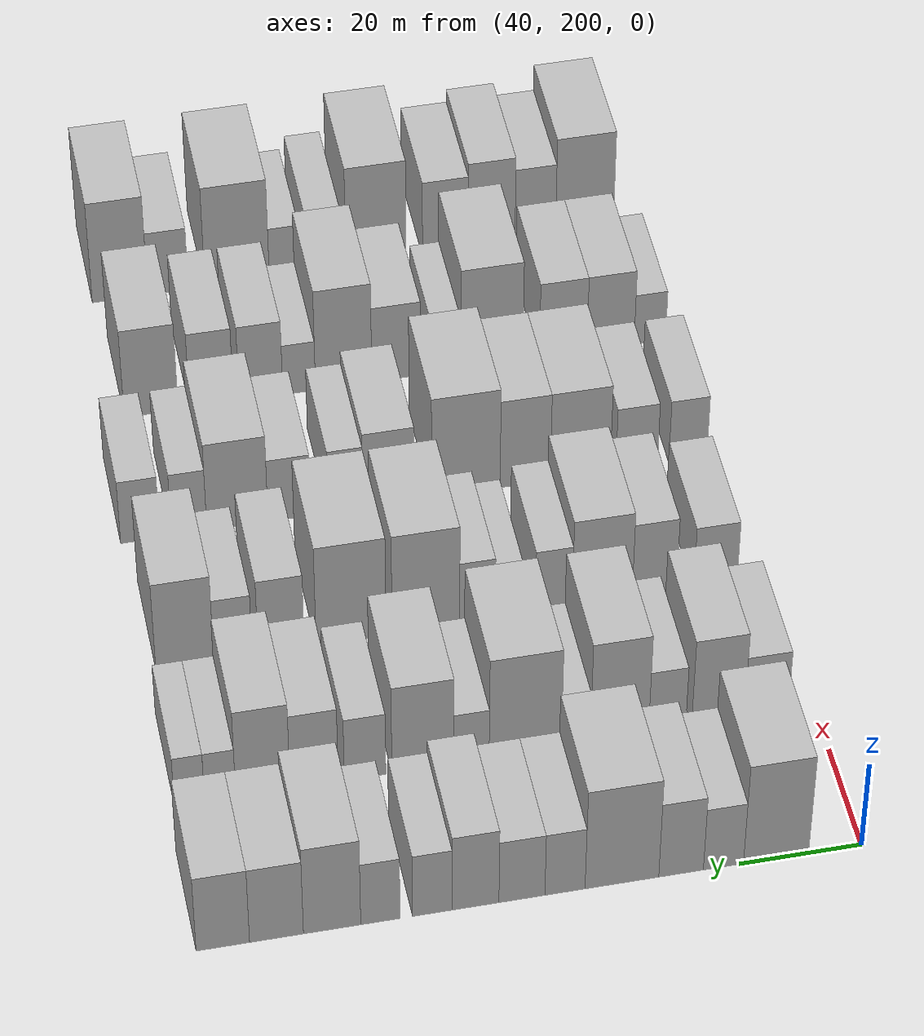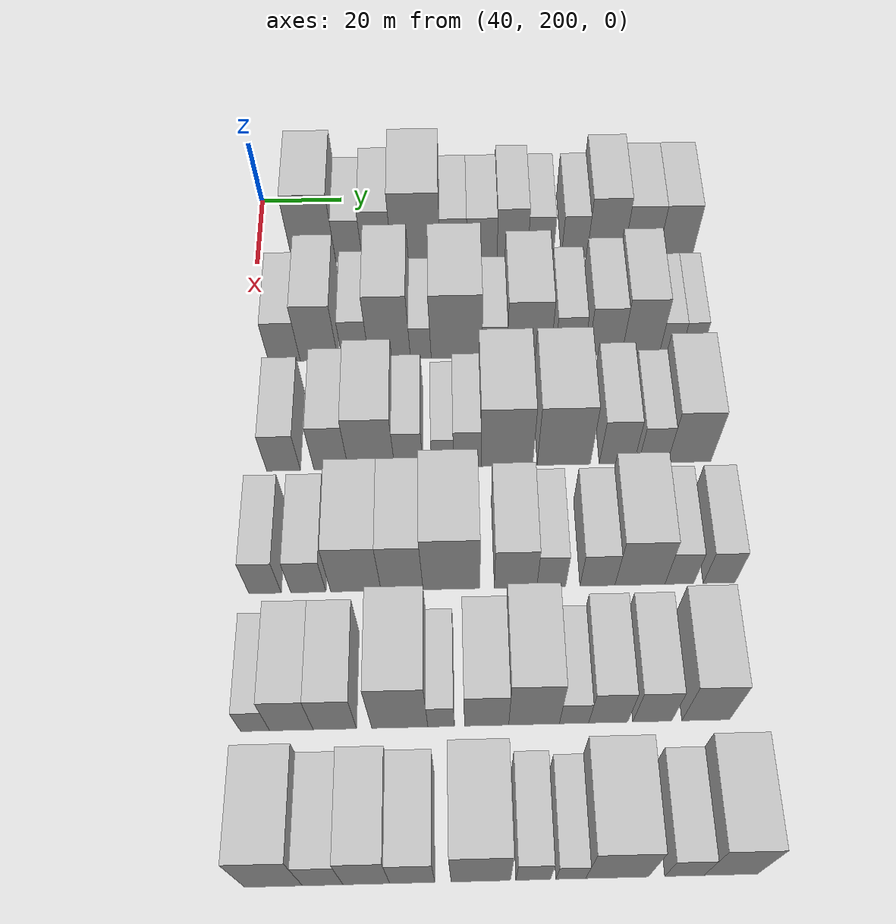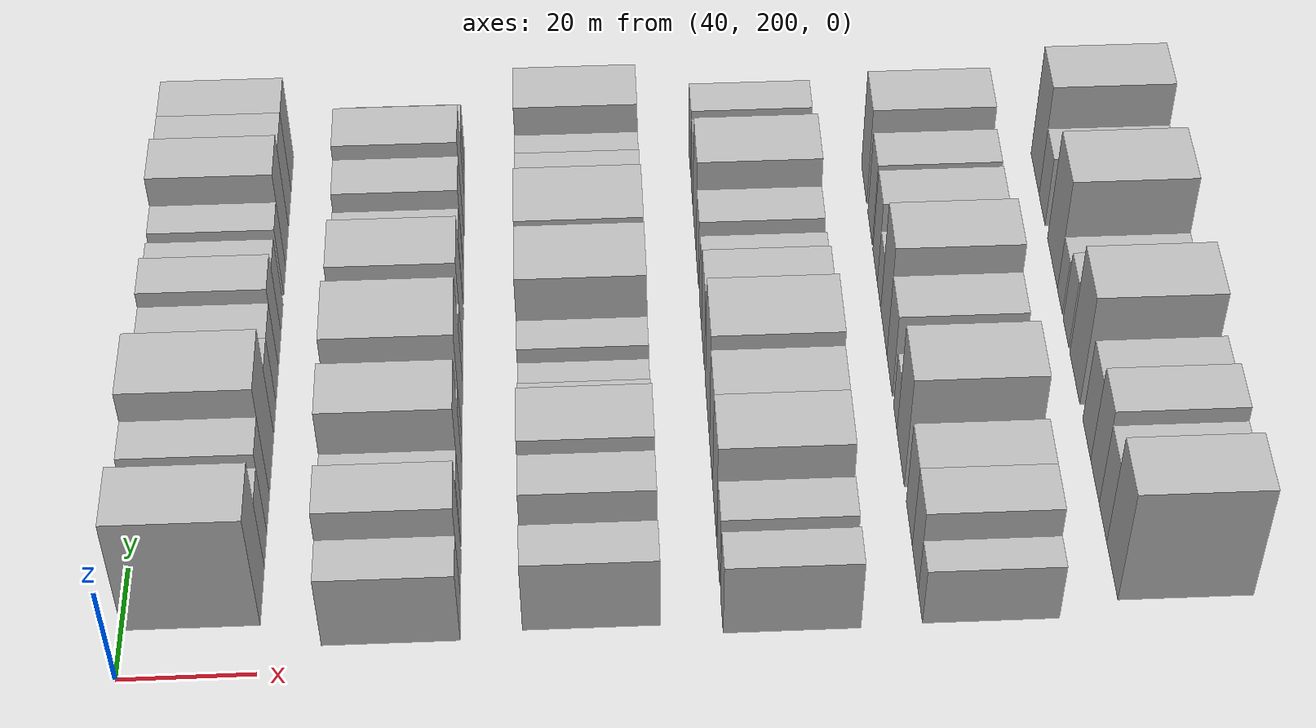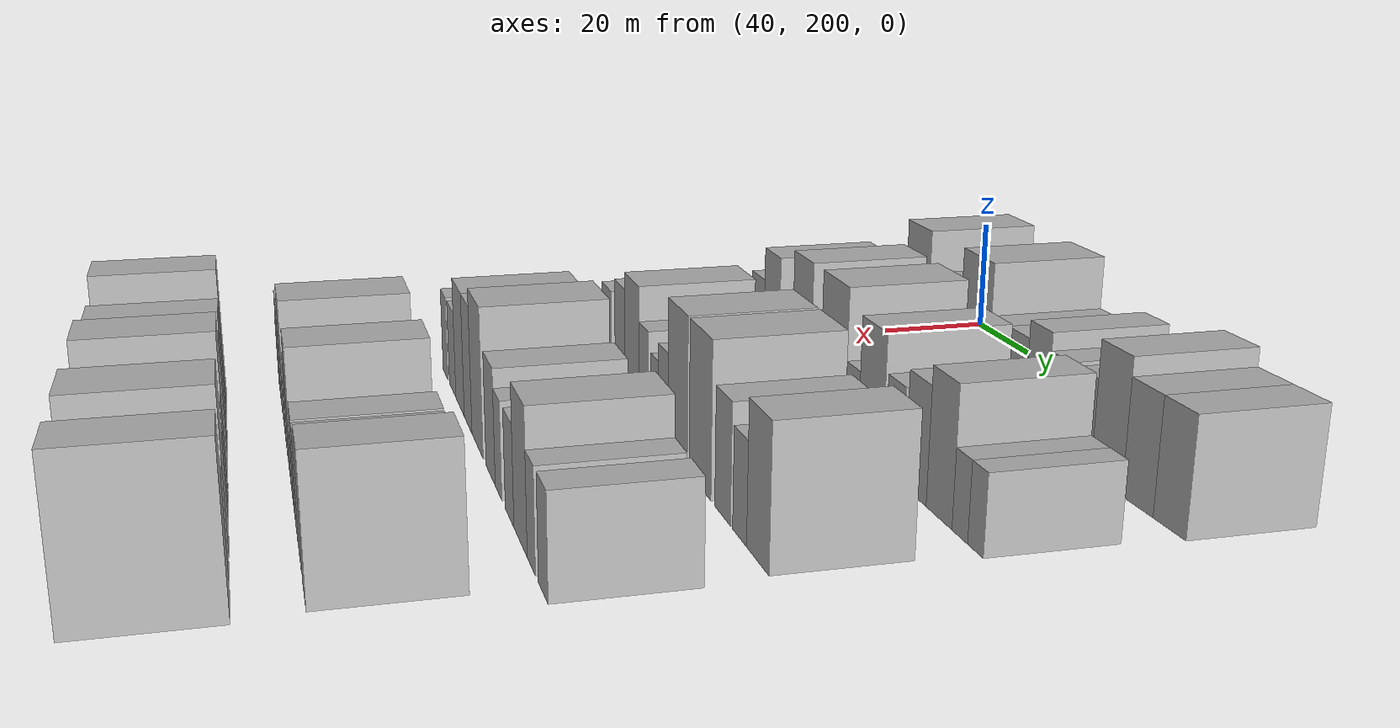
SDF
<sdf version="1.6">
 <world name="default">
  <model name="building_84">
   <static>1</static>
   <pose>50.0000 214.0266 0 0.000000 0.000000 0.000000</pose>
   <link name="link">
    <pose>0 0 12.00 0 0 0</pose>
    <collision name="collision"><geometry><box><size>20.0000 10.6325 24.0000</size></box></geometry></collision>
    <visual name="visual">
     <cast_shadows>0</cast_shadows>
     <geometry><box><size>20.0000 10.6325 24.0000</size></box></geometry>
     <material>
      <script>
       <uri>model://HANNAS_wall/materials/scripts</uri>
       <uri>model://HANNAS_wall/materials/textures</uri>
       <name>vrc/HANNAS_wall</name>
      </script>
     </material>
    </visual>
   </link>
  </model>
  <model name="building_85">
   <static>1</static>
   <pose>50.0000 222.6089 0 0.000000 0.000000 0.000000</pose>
   <link name="link">
    <pose>0 0 7.50 0 0 0</pose>
    <collision name="collision"><geometry><box><size>20.0000 6.5323 15.0000</size></box></geometry></collision>
    <visual name="visual">
     <cast_shadows>0</cast_shadows>
     <geometry><box><size>20.0000 6.5323 15.0000</size></box></geometry>
     <material>
      <script>
       <uri>model://HANNAS_wall/materials/scripts</uri>
       <uri>model://HANNAS_wall/materials/textures</uri>
       <name>vrc/HANNAS_wall</name>
      </script>
     </material>
    </visual>
   </link>
  </model>
  <model name="building_86">
   <static>1</static>
   <pose>50.0000 229.4984 0 0.000000 0.000000 0.000000</pose>
   <link name="link">
    <pose>0 0 9.00 0 0 0</pose>
    <collision name="collision"><geometry><box><size>20.0000 7.2466 18.0000</size></box></geometry></collision>
    <visual name="visual">
     <cast_shadows>0</cast_shadows>
     <geometry><box><size>20.0000 7.2466 18.0000</size></box></geometry>
     <material>
      <script>
       <uri>model://HANNAS_wall/materials/scripts</uri>
       <uri>model://HANNAS_wall/materials/textures</uri>
       <name>vrc/HANNAS_wall</name>
      </script>
     </material>
    </visual>
   </link>
  </model>
  <model name="building_87">
   <static>1</static>
   <pose>50.0000 239.0896 0 0.000000 0.000000 0.000000</pose>
   <link name="link">
    <pose>0 0 12.00 0 0 0</pose>
    <collision name="collision"><geometry><box><size>20.0000 11.9358 24.0000</size></box></geometry></collision>
    <visual name="visual">
     <cast_shadows>0</cast_shadows>
     <geometry><box><size>20.0000 11.9358 24.0000</size></box></geometry>
     <material>
      <script>
       <uri>model://HANNAS_wall/materials/scripts</uri>
       <uri>model://HANNAS_wall/materials/textures</uri>
       <name>vrc/HANNAS_wall</name>
      </script>
     </material>
    </visual>
   </link>
  </model>
  <model name="building_88">
   <static>1</static>
   <pose>50.0000 248.2940 0 0.000000 0.000000 0.000000</pose>
   <link name="link">
    <pose>0 0 7.50 0 0 0</pose>
    <collision name="collision"><geometry><box><size>20.0000 6.4732 15.0000</size></box></geometry></collision>
    <visual name="visual">
     <cast_shadows>0</cast_shadows>
     <geometry><box><size>20.0000 6.4732 15.0000</size></box></geometry>
     <material>
      <script>
       <uri>model://HANNAS_wall/materials/scripts</uri>
       <uri>model://HANNAS_wall/materials/textures</uri>
       <name>vrc/HANNAS_wall</name>
      </script>
     </material>
    </visual>
   </link>
  </model>
  <model name="building_89">
   <static>1</static>
   <pose>50.0000 255.2293 0 0.000000 0.000000 0.000000</pose>
   <link name="link">
    <pose>0 0 7.50 0 0 0</pose>
    <collision name="collision"><geometry><box><size>20.0000 7.3974 15.0000</size></box></geometry></collision>
    <visual name="visual">
     <cast_shadows>0</cast_shadows>
     <geometry><box><size>20.0000 7.3974 15.0000</size></box></geometry>
     <material>
      <script>
       <uri>model://HANNAS_wall/materials/scripts</uri>
       <uri>model://HANNAS_wall/materials/textures</uri>
       <name>vrc/HANNAS_wall</name>
      </script>
     </material>
    </visual>
   </link>
  </model>
  <model name="building_90">
   <static>1</static>
   <pose>50.0000 262.6888 0 0.000000 0.000000 0.000000</pose>
   <link name="link">
    <pose>0 0 9.00 0 0 0</pose>
    <collision name="collision"><geometry><box><size>20.0000 7.5216 18.0000</size></box></geometry></collision>
    <visual name="visual">
     <cast_shadows>0</cast_shadows>
     <geometry><box><size>20.0000 7.5216 18.0000</size></box></geometry>
     <material>
      <script>
       <uri>model://HANNAS_wall/materials/scripts</uri>
       <uri>model://HANNAS_wall/materials/textures</uri>
       <name>vrc/HANNAS_wall</name>
      </script>
     </material>
    </visual>
   </link>
  </model>
  <model name="building_91">
   <static>1</static>
   <pose>50.0000 269.6065 0 0.000000 0.000000 0.000000</pose>
   <link name="link">
    <pose>0 0 7.50 0 0 0</pose>
    <collision name="collision"><geometry><box><size>20.0000 6.3138 15.0000</size></box></geometry></collision>
    <visual name="visual">
     <cast_shadows>0</cast_shadows>
     <geometry><box><size>20.0000 6.3138 15.0000</size></box></geometry>
     <material>
      <script>
       <uri>model://HANNAS_wall/materials/scripts</uri>
       <uri>model://HANNAS_wall/materials/textures</uri>
       <name>vrc/HANNAS_wall</name>
      </script>
     </material>
    </visual>
   </link>
  </model>
  <model name="building_92">
   <static>1</static>
   <pose>50.0000 277.8945 0 0.000000 0.000000 0.000000</pose>
   <link name="link">
    <pose>0 0 7.50 0 0 0</pose>
    <collision name="collision"><geometry><box><size>20.0000 6.2622 15.0000</size></box></geometry></collision>
    <visual name="visual">
     <cast_shadows>0</cast_shadows>
     <geometry><box><size>20.0000 6.2622 15.0000</size></box></geometry>
     <material>
      <script>
       <uri>model://HANNAS_wall/materials/scripts</uri>
       <uri>model://HANNAS_wall/materials/textures</uri>
       <name>vrc/HANNAS_wall</name>
      </script>
     </material>
    </visual>
   </link>
  </model>
  <model name="building_93">
   <static>1</static>
   <pose>50.0000 285.5825 0 0.000000 0.000000 0.000000</pose>
   <link name="link">
    <pose>0 0 10.50 0 0 0</pose>
    <collision name="collision"><geometry><box><size>20.0000 9.1138 21.0000</size></box></geometry></collision>
    <visual name="visual">
     <cast_shadows>0</cast_shadows>
     <geometry><box><size>20.0000 9.1138 21.0000</size></box></geometry>
     <material>
      <script>
       <uri>model://HANNAS_wall/materials/scripts</uri>
       <uri>model://HANNAS_wall/materials/textures</uri>
       <name>vrc/HANNAS_wall</name>
      </script>
     </material>
    </visual>
   </link>
  </model>
  <model name="building_94">
   <static>1</static>
   <pose>50.0000 294.4108 0 0.000000 0.000000 0.000000</pose>
   <link name="link">
    <pose>0 0 9.00 0 0 0</pose>
    <collision name="collision"><geometry><box><size>20.0000 8.5429 18.0000</size></box></geometry></collision>
    <visual name="visual">
     <cast_shadows>0</cast_shadows>
     <geometry><box><size>20.0000 8.5429 18.0000</size></box></geometry>
     <material>
      <script>
       <uri>model://HANNAS_wall/materials/scripts</uri>
       <uri>model://HANNAS_wall/materials/textures</uri>
       <name>vrc/HANNAS_wall</name>
      </script>
     </material>
    </visual>
   </link>
  </model>
  <model name="building_95">
   <static>1</static>
   <pose>50.0000 302.9079 0 0.000000 0.000000 0.000000</pose>
   <link name="link">
    <pose>0 0 9.00 0 0 0</pose>
    <collision name="collision"><geometry><box><size>20.0000 8.4512 18.0000</size></box></geometry></collision>
    <visual name="visual">
     <cast_shadows>0</cast_shadows>
     <geometry><box><size>20.0000 8.4512 18.0000</size></box></geometry>
     <material>
      <script>
       <uri>model://HANNAS_wall/materials/scripts</uri>
       <uri>model://HANNAS_wall/materials/textures</uri>
       <name>vrc/HANNAS_wall</name>
      </script>
     </material>
    </visual>
   </link>
  </model>
  <model name="building_195">
   <static>1</static>
   <pose>79.0000 208.3672 0 0.000000 0.000000 0.000000</pose>
   <link name="link">
    <pose>0 0 7.50 0 0 0</pose>
    <collision name="collision"><geometry><box><size>20.0000 7.3820 15.0000</size></box></geometry></collision>
    <visual name="visual">
     <cast_shadows>0</cast_shadows>
     <geometry><box><size>20.0000 7.3820 15.0000</size></box></geometry>
     <material>
      <script>
       <uri>model://HANNAS_wall/materials/scripts</uri>
       <uri>model://HANNAS_wall/materials/textures</uri>
       <name>vrc/HANNAS_wall</name>
      </script>
     </material>
    </visual>
   </link>
  </model>
  <model name="building_196">
   <static>1</static>
   <pose>79.0000 216.4586 0 0.000000 0.000000 0.000000</pose>
   <link name="link">
    <pose>0 0 10.50 0 0 0</pose>
    <collision name="collision"><geometry><box><size>20.0000 8.8009 21.0000</size></box></geometry></collision>
    <visual name="visual">
     <cast_shadows>0</cast_shadows>
     <geometry><box><size>20.0000 8.8009 21.0000</size></box></geometry>
     <material>
      <script>
       <uri>model://HANNAS_wall/materials/scripts</uri>
       <uri>model://HANNAS_wall/materials/textures</uri>
       <name>vrc/HANNAS_wall</name>
      </script>
     </material>
    </visual>
   </link>
  </model>
  <model name="building_197">
   <static>1</static>
   <pose>79.0000 224.9565 0 0.000000 0.000000 0.000000</pose>
   <link name="link">
    <pose>0 0 7.50 0 0 0</pose>
    <collision name="collision"><geometry><box><size>20.0000 6.1950 15.0000</size></box></geometry></collision>
    <visual name="visual">
     <cast_shadows>0</cast_shadows>
     <geometry><box><size>20.0000 6.1950 15.0000</size></box></geometry>
     <material>
      <script>
       <uri>model://HANNAS_wall/materials/scripts</uri>
       <uri>model://HANNAS_wall/materials/textures</uri>
       <name>vrc/HANNAS_wall</name>
      </script>
     </material>
    </visual>
   </link>
  </model>
  <model name="building_198">
   <static>1</static>
   <pose>79.0000 232.9053 0 0.000000 0.000000 0.000000</pose>
   <link name="link">
    <pose>0 0 12.00 0 0 0</pose>
    <collision name="collision"><geometry><box><size>20.0000 9.7025 24.0000</size></box></geometry></collision>
    <visual name="visual">
     <cast_shadows>0</cast_shadows>
     <geometry><box><size>20.0000 9.7025 24.0000</size></box></geometry>
     <material>
      <script>
       <uri>model://HANNAS_wall/materials/scripts</uri>
       <uri>model://HANNAS_wall/materials/textures</uri>
       <name>vrc/HANNAS_wall</name>
      </script>
     </material>
    </visual>
   </link>
  </model>
  <model name="building_199">
   <static>1</static>
   <pose>79.0000 240.1690 0 0.000000 0.000000 0.000000</pose>
   <link name="link">
    <pose>0 0 6.00 0 0 0</pose>
    <collision name="collision"><geometry><box><size>20.0000 4.8248 12.0000</size></box></geometry></collision>
    <visual name="visual">
     <cast_shadows>0</cast_shadows>
     <geometry><box><size>20.0000 4.8248 12.0000</size></box></geometry>
     <material>
      <script>
       <uri>model://HANNAS_wall/materials/scripts</uri>
       <uri>model://HANNAS_wall/materials/textures</uri>
       <name>vrc/HANNAS_wall</name>
      </script>
     </material>
    </visual>
   </link>
  </model>
  <model name="building_200">
   <static>1</static>
   <pose>79.0000 248.5362 0 0.000000 0.000000 0.000000</pose>
   <link name="link">
    <pose>0 0 12.00 0 0 0</pose>
    <collision name="collision"><geometry><box><size>20.0000 11.9097 24.0000</size></box></geometry></collision>
    <visual name="visual">
     <cast_shadows>0</cast_shadows>
     <geometry><box><size>20.0000 11.9097 24.0000</size></box></geometry>
     <material>
      <script>
       <uri>model://HANNAS_wall/materials/scripts</uri>
       <uri>model://HANNAS_wall/materials/textures</uri>
       <name>vrc/HANNAS_wall</name>
      </script>
     </material>
    </visual>
   </link>
  </model>
  <model name="building_201">
   <static>1</static>
   <pose>79.0000 257.3900 0 0.000000 0.000000 0.000000</pose>
   <link name="link">
    <pose>0 0 6.00 0 0 0</pose>
    <collision name="collision"><geometry><box><size>20.0000 5.7978 12.0000</size></box></geometry></collision>
    <visual name="visual">
     <cast_shadows>0</cast_shadows>
     <geometry><box><size>20.0000 5.7978 12.0000</size></box></geometry>
     <material>
      <script>
       <uri>model://HANNAS_wall/materials/scripts</uri>
       <uri>model://HANNAS_wall/materials/textures</uri>
       <name>vrc/HANNAS_wall</name>
      </script>
     </material>
    </visual>
   </link>
  </model>
  <model name="building_202">
   <static>1</static>
   <pose>79.0000 265.3870 0 0.000000 0.000000 0.000000</pose>
   <link name="link">
    <pose>0 0 10.50 0 0 0</pose>
    <collision name="collision"><geometry><box><size>20.0000 10.1962 21.0000</size></box></geometry></collision>
    <visual name="visual">
     <cast_shadows>0</cast_shadows>
     <geometry><box><size>20.0000 10.1962 21.0000</size></box></geometry>
     <material>
      <script>
       <uri>model://HANNAS_wall/materials/scripts</uri>
       <uri>model://HANNAS_wall/materials/textures</uri>
       <name>vrc/HANNAS_wall</name>
      </script>
     </material>
    </visual>
   </link>
  </model>
  <model name="building_203">
   <static>1</static>
   <pose>79.0000 274.8797 0 0.000000 0.000000 0.000000</pose>
   <link name="link">
    <pose>0 0 7.50 0 0 0</pose>
    <collision name="collision"><geometry><box><size>20.0000 6.7892 15.0000</size></box></geometry></collision>
    <visual name="visual">
     <cast_shadows>0</cast_shadows>
     <geometry><box><size>20.0000 6.7892 15.0000</size></box></geometry>
     <material>
      <script>
       <uri>model://HANNAS_wall/materials/scripts</uri>
       <uri>model://HANNAS_wall/materials/textures</uri>
       <name>vrc/HANNAS_wall</name>
      </script>
     </material>
    </visual>
   </link>
  </model>
  <model name="building_204">
   <static>1</static>
   <pose>79.0000 283.2066 0 0.000000 0.000000 0.000000</pose>
   <link name="link">
    <pose>0 0 9.00 0 0 0</pose>
    <collision name="collision"><geometry><box><size>20.0000 7.8648 18.0000</size></box></geometry></collision>
    <visual name="visual">
     <cast_shadows>0</cast_shadows>
     <geometry><box><size>20.0000 7.8648 18.0000</size></box></geometry>
     <material>
      <script>
       <uri>model://HANNAS_wall/materials/scripts</uri>
       <uri>model://HANNAS_wall/materials/textures</uri>
       <name>vrc/HANNAS_wall</name>
      </script>
     </material>
    </visual>
   </link>
  </model>
  <model name="building_205">
   <static>1</static>
   <pose>79.0000 291.5649 0 0.000000 0.000000 0.000000</pose>
   <link name="link">
    <pose>0 0 10.50 0 0 0</pose>
    <collision name="collision"><geometry><box><size>20.0000 8.8518 21.0000</size></box></geometry></collision>
    <visual name="visual">
     <cast_shadows>0</cast_shadows>
     <geometry><box><size>20.0000 8.8518 21.0000</size></box></geometry>
     <material>
      <script>
       <uri>model://HANNAS_wall/materials/scripts</uri>
       <uri>model://HANNAS_wall/materials/textures</uri>
       <name>vrc/HANNAS_wall</name>
      </script>
     </material>
    </visual>
   </link>
  </model>
  <model name="building_206">
   <static>1</static>
   <pose>79.0000 298.5210 0 0.000000 0.000000 0.000000</pose>
   <link name="link">
    <pose>0 0 6.00 0 0 0</pose>
    <collision name="collision"><geometry><box><size>20.0000 5.0604 12.0000</size></box></geometry></collision>
    <visual name="visual">
     <cast_shadows>0</cast_shadows>
     <geometry><box><size>20.0000 5.0604 12.0000</size></box></geometry>
     <material>
      <script>
       <uri>model://HANNAS_wall/materials/scripts</uri>
       <uri>model://HANNAS_wall/materials/textures</uri>
       <name>vrc/HANNAS_wall</name>
      </script>
     </material>
    </visual>
   </link>
  </model>
  <model name="building_207">
   <static>1</static>
   <pose>79.0000 303.5034 0 0.000000 0.000000 0.000000</pose>
   <link name="link">
    <pose>0 0 6.00 0 0 0</pose>
    <collision name="collision"><geometry><box><size>20.0000 4.9042 12.0000</size></box></geometry></collision>
    <visual name="visual">
     <cast_shadows>0</cast_shadows>
     <geometry><box><size>20.0000 4.9042 12.0000</size></box></geometry>
     <material>
      <script>
       <uri>model://HANNAS_wall/materials/scripts</uri>
       <uri>model://HANNAS_wall/materials/textures</uri>
       <name>vrc/HANNAS_wall</name>
      </script>
     </material>
    </visual>
   </link>
  </model>
  <model name="building_313">
   <static>1</static>
   <pose>108.0000 209.8255 0 0.000000 0.000000 0.000000</pose>
   <link name="link">
    <pose>0 0 7.50 0 0 0</pose>
    <collision name="collision"><geometry><box><size>20.0000 7.4427 15.0000</size></box></geometry></collision>
    <visual name="visual">
     <cast_shadows>0</cast_shadows>
     <geometry><box><size>20.0000 7.4427 15.0000</size></box></geometry>
     <material>
      <script>
       <uri>model://HANNAS_wall/materials/scripts</uri>
       <uri>model://HANNAS_wall/materials/textures</uri>
       <name>vrc/HANNAS_wall</name>
      </script>
     </material>
    </visual>
   </link>
  </model>
  <model name="building_314">
   <static>1</static>
   <pose>108.0000 220.3286 0 0.000000 0.000000 0.000000</pose>
   <link name="link">
    <pose>0 0 9.00 0 0 0</pose>
    <collision name="collision"><geometry><box><size>20.0000 7.5635 18.0000</size></box></geometry></collision>
    <visual name="visual">
     <cast_shadows>0</cast_shadows>
     <geometry><box><size>20.0000 7.5635 18.0000</size></box></geometry>
     <material>
      <script>
       <uri>model://HANNAS_wall/materials/scripts</uri>
       <uri>model://HANNAS_wall/materials/textures</uri>
       <name>vrc/HANNAS_wall</name>
      </script>
     </material>
    </visual>
   </link>
  </model>
  <model name="building_315">
   <static>1</static>
   <pose>108.0000 229.2402 0 0.000000 0.000000 0.000000</pose>
   <link name="link">
    <pose>0 0 10.50 0 0 0</pose>
    <collision name="collision"><geometry><box><size>20.0000 10.2595 21.0000</size></box></geometry></collision>
    <visual name="visual">
     <cast_shadows>0</cast_shadows>
     <geometry><box><size>20.0000 10.2595 21.0000</size></box></geometry>
     <material>
      <script>
       <uri>model://HANNAS_wall/materials/scripts</uri>
       <uri>model://HANNAS_wall/materials/textures</uri>
       <name>vrc/HANNAS_wall</name>
      </script>
     </material>
    </visual>
   </link>
  </model>
  <model name="building_316">
   <static>1</static>
   <pose>108.0000 237.4989 0 0.000000 0.000000 0.000000</pose>
   <link name="link">
    <pose>0 0 7.50 0 0 0</pose>
    <collision name="collision"><geometry><box><size>20.0000 6.2580 15.0000</size></box></geometry></collision>
    <visual name="visual">
     <cast_shadows>0</cast_shadows>
     <geometry><box><size>20.0000 6.2580 15.0000</size></box></geometry>
     <material>
      <script>
       <uri>model://HANNAS_wall/materials/scripts</uri>
       <uri>model://HANNAS_wall/materials/textures</uri>
       <name>vrc/HANNAS_wall</name>
      </script>
     </material>
    </visual>
   </link>
  </model>
  <model name="building_317">
   <static>1</static>
   <pose>108.0000 245.0431 0 0.000000 0.000000 0.000000</pose>
   <link name="link">
    <pose>0 0 6.00 0 0 0</pose>
    <collision name="collision"><geometry><box><size>20.0000 4.8304 12.0000</size></box></geometry></collision>
    <visual name="visual">
     <cast_shadows>0</cast_shadows>
     <geometry><box><size>20.0000 4.8304 12.0000</size></box></geometry>
     <material>
      <script>
       <uri>model://HANNAS_wall/materials/scripts</uri>
       <uri>model://HANNAS_wall/materials/textures</uri>
       <name>vrc/HANNAS_wall</name>
      </script>
     </material>
    </visual>
   </link>
  </model>
  <model name="building_318">
   <static>1</static>
   <pose>108.0000 250.4618 0 0.000000 0.000000 0.000000</pose>
   <link name="link">
    <pose>0 0 7.50 0 0 0</pose>
    <collision name="collision"><geometry><box><size>20.0000 6.0070 15.0000</size></box></geometry></collision>
    <visual name="visual">
     <cast_shadows>0</cast_shadows>
     <geometry><box><size>20.0000 6.0070 15.0000</size></box></geometry>
     <material>
      <script>
       <uri>model://HANNAS_wall/materials/scripts</uri>
       <uri>model://HANNAS_wall/materials/textures</uri>
       <name>vrc/HANNAS_wall</name>
      </script>
     </material>
    </visual>
   </link>
  </model>
  <model name="building_319">
   <static>1</static>
   <pose>108.0000 259.1698 0 0.000000 0.000000 0.000000</pose>
   <link name="link">
    <pose>0 0 12.00 0 0 0</pose>
    <collision name="collision"><geometry><box><size>20.0000 11.4090 24.0000</size></box></geometry></collision>
    <visual name="visual">
     <cast_shadows>0</cast_shadows>
     <geometry><box><size>20.0000 11.4090 24.0000</size></box></geometry>
     <material>
      <script>
       <uri>model://HANNAS_wall/materials/scripts</uri>
       <uri>model://HANNAS_wall/materials/textures</uri>
       <name>vrc/HANNAS_wall</name>
      </script>
     </material>
    </visual>
   </link>
  </model>
  <model name="building_320">
   <static>1</static>
   <pose>108.0000 271.7683 0 0.000000 0.000000 0.000000</pose>
   <link name="link">
    <pose>0 0 12.00 0 0 0</pose>
    <collision name="collision"><geometry><box><size>20.0000 11.7879 24.0000</size></box></geometry></collision>
    <visual name="visual">
     <cast_shadows>0</cast_shadows>
     <geometry><box><size>20.0000 11.7879 24.0000</size></box></geometry>
     <material>
      <script>
       <uri>model://HANNAS_wall/materials/scripts</uri>
       <uri>model://HANNAS_wall/materials/textures</uri>
       <name>vrc/HANNAS_wall</name>
      </script>
     </material>
    </visual>
   </link>
  </model>
  <model name="building_321">
   <static>1</static>
   <pose>108.0000 283.5213 0 0.000000 0.000000 0.000000</pose>
   <link name="link">
    <pose>0 0 9.00 0 0 0</pose>
    <collision name="collision"><geometry><box><size>20.0000 7.7180 18.0000</size></box></geometry></collision>
    <visual name="visual">
     <cast_shadows>0</cast_shadows>
     <geometry><box><size>20.0000 7.7180 18.0000</size></box></geometry>
     <material>
      <script>
       <uri>model://HANNAS_wall/materials/scripts</uri>
       <uri>model://HANNAS_wall/materials/textures</uri>
       <name>vrc/HANNAS_wall</name>
      </script>
     </material>
    </visual>
   </link>
  </model>
  <model name="building_322">
   <static>1</static>
   <pose>108.0000 291.5902 0 0.000000 0.000000 0.000000</pose>
   <link name="link">
    <pose>0 0 7.50 0 0 0</pose>
    <collision name="collision"><geometry><box><size>20.0000 6.4199 15.0000</size></box></geometry></collision>
    <visual name="visual">
     <cast_shadows>0</cast_shadows>
     <geometry><box><size>20.0000 6.4199 15.0000</size></box></geometry>
     <material>
      <script>
       <uri>model://HANNAS_wall/materials/scripts</uri>
       <uri>model://HANNAS_wall/materials/textures</uri>
       <name>vrc/HANNAS_wall</name>
      </script>
     </material>
    </visual>
   </link>
  </model>
  <model name="building_323">
   <static>1</static>
   <pose>108.0000 299.6321 0 0.000000 0.000000 0.000000</pose>
   <link name="link">
    <pose>0 0 10.50 0 0 0</pose>
    <collision name="collision"><geometry><box><size>20.0000 9.6639 21.0000</size></box></geometry></collision>
    <visual name="visual">
     <cast_shadows>0</cast_shadows>
     <geometry><box><size>20.0000 9.6639 21.0000</size></box></geometry>
     <material>
      <script>
       <uri>model://HANNAS_wall/materials/scripts</uri>
       <uri>model://HANNAS_wall/materials/textures</uri>
       <name>vrc/HANNAS_wall</name>
      </script>
     </material>
    </visual>
   </link>
  </model>
  <model name="building_430">
   <static>1</static>
   <pose>137.0000 207.6276 0 0.000000 0.000000 0.000000</pose>
   <link name="link">
    <pose>0 0 7.50 0 0 0</pose>
    <collision name="collision"><geometry><box><size>20.0000 6.7034 15.0000</size></box></geometry></collision>
    <visual name="visual">
     <cast_shadows>0</cast_shadows>
     <geometry><box><size>20.0000 6.7034 15.0000</size></box></geometry>
     <material>
      <script>
       <uri>model://HANNAS_wall/materials/scripts</uri>
       <uri>model://HANNAS_wall/materials/textures</uri>
       <name>vrc/HANNAS_wall</name>
      </script>
     </material>
    </visual>
   </link>
  </model>
  <model name="building_431">
   <static>1</static>
   <pose>137.0000 216.6439 0 0.000000 0.000000 0.000000</pose>
   <link name="link">
    <pose>0 0 7.50 0 0 0</pose>
    <collision name="collision"><geometry><box><size>20.0000 7.3292 15.0000</size></box></geometry></collision>
    <visual name="visual">
     <cast_shadows>0</cast_shadows>
     <geometry><box><size>20.0000 7.3292 15.0000</size></box></geometry>
     <material>
      <script>
       <uri>model://HANNAS_wall/materials/scripts</uri>
       <uri>model://HANNAS_wall/materials/textures</uri>
       <name>vrc/HANNAS_wall</name>
      </script>
     </material>
    </visual>
   </link>
  </model>
  <model name="building_432">
   <static>1</static>
   <pose>137.0000 226.5525 0 0.000000 0.000000 0.000000</pose>
   <link name="link">
    <pose>0 0 10.50 0 0 0</pose>
    <collision name="collision"><geometry><box><size>20.0000 10.4880 21.0000</size></box></geometry></collision>
    <visual name="visual">
     <cast_shadows>0</cast_shadows>
     <geometry><box><size>20.0000 10.4880 21.0000</size></box></geometry>
     <material>
      <script>
       <uri>model://HANNAS_wall/materials/scripts</uri>
       <uri>model://HANNAS_wall/materials/textures</uri>
       <name>vrc/HANNAS_wall</name>
      </script>
     </material>
    </visual>
   </link>
  </model>
  <model name="building_433">
   <static>1</static>
   <pose>137.0000 236.1817 0 0.000000 0.000000 0.000000</pose>
   <link name="link">
    <pose>0 0 10.50 0 0 0</pose>
    <collision name="collision"><geometry><box><size>20.0000 8.7706 21.0000</size></box></geometry></collision>
    <visual name="visual">
     <cast_shadows>0</cast_shadows>
     <geometry><box><size>20.0000 8.7706 21.0000</size></box></geometry>
     <material>
      <script>
       <uri>model://HANNAS_wall/materials/scripts</uri>
       <uri>model://HANNAS_wall/materials/textures</uri>
       <name>vrc/HANNAS_wall</name>
      </script>
     </material>
    </visual>
   </link>
  </model>
  <model name="building_434">
   <static>1</static>
   <pose>137.0000 246.5152 0 0.000000 0.000000 0.000000</pose>
   <link name="link">
    <pose>0 0 12.00 0 0 0</pose>
    <collision name="collision"><geometry><box><size>20.0000 11.8962 24.0000</size></box></geometry></collision>
    <visual name="visual">
     <cast_shadows>0</cast_shadows>
     <geometry><box><size>20.0000 11.8962 24.0000</size></box></geometry>
     <material>
      <script>
       <uri>model://HANNAS_wall/materials/scripts</uri>
       <uri>model://HANNAS_wall/materials/textures</uri>
       <name>vrc/HANNAS_wall</name>
      </script>
     </material>
    </visual>
   </link>
  </model>
  <model name="building_435">
   <static>1</static>
   <pose>137.0000 259.9093 0 0.000000 0.000000 0.000000</pose>
   <link name="link">
    <pose>0 0 9.00 0 0 0</pose>
    <collision name="collision"><geometry><box><size>20.0000 8.8919 18.0000</size></box></geometry></collision>
    <visual name="visual">
     <cast_shadows>0</cast_shadows>
     <geometry><box><size>20.0000 8.8919 18.0000</size></box></geometry>
     <material>
      <script>
       <uri>model://HANNAS_wall/materials/scripts</uri>
       <uri>model://HANNAS_wall/materials/textures</uri>
       <name>vrc/HANNAS_wall</name>
      </script>
     </material>
    </visual>
   </link>
  </model>
  <model name="building_436">
   <static>1</static>
   <pose>137.0000 267.3705 0 0.000000 0.000000 0.000000</pose>
   <link name="link">
    <pose>0 0 7.50 0 0 0</pose>
    <collision name="collision"><geometry><box><size>20.0000 6.0305 15.0000</size></box></geometry></collision>
    <visual name="visual">
     <cast_shadows>0</cast_shadows>
     <geometry><box><size>20.0000 6.0305 15.0000</size></box></geometry>
     <material>
      <script>
       <uri>model://HANNAS_wall/materials/scripts</uri>
       <uri>model://HANNAS_wall/materials/textures</uri>
       <name>vrc/HANNAS_wall</name>
      </script>
     </material>
    </visual>
   </link>
  </model>
  <model name="building_437">
   <static>1</static>
   <pose>137.0000 277.0547 0 0.000000 0.000000 0.000000</pose>
   <link name="link">
    <pose>0 0 7.50 0 0 0</pose>
    <collision name="collision"><geometry><box><size>20.0000 7.3378 15.0000</size></box></geometry></collision>
    <visual name="visual">
     <cast_shadows>0</cast_shadows>
     <geometry><box><size>20.0000 7.3378 15.0000</size></box></geometry>
     <material>
      <script>
       <uri>model://HANNAS_wall/materials/scripts</uri>
       <uri>model://HANNAS_wall/materials/textures</uri>
       <name>vrc/HANNAS_wall</name>
      </script>
     </material>
    </visual>
   </link>
  </model>
  <model name="building_438">
   <static>1</static>
   <pose>137.0000 285.9719 0 0.000000 0.000000 0.000000</pose>
   <link name="link">
    <pose>0 0 10.50 0 0 0</pose>
    <collision name="collision"><geometry><box><size>20.0000 10.4966 21.0000</size></box></geometry></collision>
    <visual name="visual">
     <cast_shadows>0</cast_shadows>
     <geometry><box><size>20.0000 10.4966 21.0000</size></box></geometry>
     <material>
      <script>
       <uri>model://HANNAS_wall/materials/scripts</uri>
       <uri>model://HANNAS_wall/materials/textures</uri>
       <name>vrc/HANNAS_wall</name>
      </script>
     </material>
    </visual>
   </link>
  </model>
  <model name="building_439">
   <static>1</static>
   <pose>137.0000 294.2397 0 0.000000 0.000000 0.000000</pose>
   <link name="link">
    <pose>0 0 7.50 0 0 0</pose>
    <collision name="collision"><geometry><box><size>20.0000 6.0389 15.0000</size></box></geometry></collision>
    <visual name="visual">
     <cast_shadows>0</cast_shadows>
     <geometry><box><size>20.0000 6.0389 15.0000</size></box></geometry>
     <material>
      <script>
       <uri>model://HANNAS_wall/materials/scripts</uri>
       <uri>model://HANNAS_wall/materials/textures</uri>
       <name>vrc/HANNAS_wall</name>
      </script>
     </material>
    </visual>
   </link>
  </model>
  <model name="building_440">
   <static>1</static>
   <pose>137.0000 302.6116 0 0.000000 0.000000 0.000000</pose>
   <link name="link">
    <pose>0 0 7.50 0 0 0</pose>
    <collision name="collision"><geometry><box><size>20.0000 6.7050 15.0000</size></box></geometry></collision>
    <visual name="visual">
     <cast_shadows>0</cast_shadows>
     <geometry><box><size>20.0000 6.7050 15.0000</size></box></geometry>
     <material>
      <script>
       <uri>model://HANNAS_wall/materials/scripts</uri>
       <uri>model://HANNAS_wall/materials/textures</uri>
       <name>vrc/HANNAS_wall</name>
      </script>
     </material>
    </visual>
   </link>
  </model>
  <model name="building_534">
   <static>1</static>
   <pose>166.0000 207.5656 0 0.000000 0.000000 0.000000</pose>
   <link name="link">
    <pose>0 0 6.00 0 0 0</pose>
    <collision name="collision"><geometry><box><size>20.0000 5.6765 12.0000</size></box></geometry></collision>
    <visual name="visual">
     <cast_shadows>0</cast_shadows>
     <geometry><box><size>20.0000 5.6765 12.0000</size></box></geometry>
     <material>
      <script>
       <uri>model://HANNAS_wall/materials/scripts</uri>
       <uri>model://HANNAS_wall/materials/textures</uri>
       <name>vrc/HANNAS_wall</name>
      </script>
     </material>
    </visual>
   </link>
  </model>
  <model name="building_535">
   <static>1</static>
   <pose>166.0000 214.6602 0 0.000000 0.000000 0.000000</pose>
   <link name="link">
    <pose>0 0 9.00 0 0 0</pose>
    <collision name="collision"><geometry><box><size>20.0000 8.5126 18.0000</size></box></geometry></collision>
    <visual name="visual">
     <cast_shadows>0</cast_shadows>
     <geometry><box><size>20.0000 8.5126 18.0000</size></box></geometry>
     <material>
      <script>
       <uri>model://HANNAS_wall/materials/scripts</uri>
       <uri>model://HANNAS_wall/materials/textures</uri>
       <name>vrc/HANNAS_wall</name>
      </script>
     </material>
    </visual>
   </link>
  </model>
  <model name="building_536">
   <static>1</static>
   <pose>166.0000 223.1804 0 0.000000 0.000000 0.000000</pose>
   <link name="link">
    <pose>0 0 9.00 0 0 0</pose>
    <collision name="collision"><geometry><box><size>20.0000 8.5278 18.0000</size></box></geometry></collision>
    <visual name="visual">
     <cast_shadows>0</cast_shadows>
     <geometry><box><size>20.0000 8.5278 18.0000</size></box></geometry>
     <material>
      <script>
       <uri>model://HANNAS_wall/materials/scripts</uri>
       <uri>model://HANNAS_wall/materials/textures</uri>
       <name>vrc/HANNAS_wall</name>
      </script>
     </material>
    </visual>
   </link>
  </model>
  <model name="building_537">
   <static>1</static>
   <pose>166.0000 235.9491 0 0.000000 0.000000 0.000000</pose>
   <link name="link">
    <pose>0 0 12.00 0 0 0</pose>
    <collision name="collision"><geometry><box><size>20.0000 11.0096 24.0000</size></box></geometry></collision>
    <visual name="visual">
     <cast_shadows>0</cast_shadows>
     <geometry><box><size>20.0000 11.0096 24.0000</size></box></geometry>
     <material>
      <script>
       <uri>model://HANNAS_wall/materials/scripts</uri>
       <uri>model://HANNAS_wall/materials/textures</uri>
       <name>vrc/HANNAS_wall</name>
      </script>
     </material>
    </visual>
   </link>
  </model>
  <model name="building_538">
   <static>1</static>
   <pose>166.0000 244.0671 0 0.000000 0.000000 0.000000</pose>
   <link name="link">
    <pose>0 0 6.00 0 0 0</pose>
    <collision name="collision"><geometry><box><size>20.0000 5.2264 12.0000</size></box></geometry></collision>
    <visual name="visual">
     <cast_shadows>0</cast_shadows>
     <geometry><box><size>20.0000 5.2264 12.0000</size></box></geometry>
     <material>
      <script>
       <uri>model://HANNAS_wall/materials/scripts</uri>
       <uri>model://HANNAS_wall/materials/textures</uri>
       <name>vrc/HANNAS_wall</name>
      </script>
     </material>
    </visual>
   </link>
  </model>
  <model name="building_539">
   <static>1</static>
   <pose>166.0000 253.0116 0 0.000000 0.000000 0.000000</pose>
   <link name="link">
    <pose>0 0 9.00 0 0 0</pose>
    <collision name="collision"><geometry><box><size>20.0000 8.6625 18.0000</size></box></geometry></collision>
    <visual name="visual">
     <cast_shadows>0</cast_shadows>
     <geometry><box><size>20.0000 8.6625 18.0000</size></box></geometry>
     <material>
      <script>
       <uri>model://HANNAS_wall/materials/scripts</uri>
       <uri>model://HANNAS_wall/materials/textures</uri>
       <name>vrc/HANNAS_wall</name>
      </script>
     </material>
    </visual>
   </link>
  </model>
  <model name="building_540">
   <static>1</static>
   <pose>166.0000 262.3388 0 0.000000 0.000000 0.000000</pose>
   <link name="link">
    <pose>0 0 12.00 0 0 0</pose>
    <collision name="collision"><geometry><box><size>20.0000 9.9920 24.0000</size></box></geometry></collision>
    <visual name="visual">
     <cast_shadows>0</cast_shadows>
     <geometry><box><size>20.0000 9.9920 24.0000</size></box></geometry>
     <material>
      <script>
       <uri>model://HANNAS_wall/materials/scripts</uri>
       <uri>model://HANNAS_wall/materials/textures</uri>
       <name>vrc/HANNAS_wall</name>
      </script>
     </material>
    </visual>
   </link>
  </model>
  <model name="building_541">
   <static>1</static>
   <pose>166.0000 270.2276 0 0.000000 0.000000 0.000000</pose>
   <link name="link">
    <pose>0 0 6.00 0 0 0</pose>
    <collision name="collision"><geometry><box><size>20.0000 5.7856 12.0000</size></box></geometry></collision>
    <visual name="visual">
     <cast_shadows>0</cast_shadows>
     <geometry><box><size>20.0000 5.7856 12.0000</size></box></geometry>
     <material>
      <script>
       <uri>model://HANNAS_wall/materials/scripts</uri>
       <uri>model://HANNAS_wall/materials/textures</uri>
       <name>vrc/HANNAS_wall</name>
      </script>
     </material>
    </visual>
   </link>
  </model>
  <model name="building_542">
   <static>1</static>
   <pose>166.0000 276.9732 0 0.000000 0.000000 0.000000</pose>
   <link name="link">
    <pose>0 0 9.00 0 0 0</pose>
    <collision name="collision"><geometry><box><size>20.0000 7.7057 18.0000</size></box></geometry></collision>
    <visual name="visual">
     <cast_shadows>0</cast_shadows>
     <geometry><box><size>20.0000 7.7057 18.0000</size></box></geometry>
     <material>
      <script>
       <uri>model://HANNAS_wall/materials/scripts</uri>
       <uri>model://HANNAS_wall/materials/textures</uri>
       <name>vrc/HANNAS_wall</name>
      </script>
     </material>
    </visual>
   </link>
  </model>
  <model name="building_543">
   <static>1</static>
   <pose>166.0000 285.6853 0 0.000000 0.000000 0.000000</pose>
   <link name="link">
    <pose>0 0 9.00 0 0 0</pose>
    <collision name="collision"><geometry><box><size>20.0000 7.7184 18.0000</size></box></geometry></collision>
    <visual name="visual">
     <cast_shadows>0</cast_shadows>
     <geometry><box><size>20.0000 7.7184 18.0000</size></box></geometry>
     <material>
      <script>
       <uri>model://HANNAS_wall/materials/scripts</uri>
       <uri>model://HANNAS_wall/materials/textures</uri>
       <name>vrc/HANNAS_wall</name>
      </script>
     </material>
    </visual>
   </link>
  </model>
  <model name="building_544">
   <static>1</static>
   <pose>166.0000 296.2690 0 0.000000 0.000000 0.000000</pose>
   <link name="link">
    <pose>0 0 10.50 0 0 0</pose>
    <collision name="collision"><geometry><box><size>20.0000 9.4490 21.0000</size></box></geometry></collision>
    <visual name="visual">
     <cast_shadows>0</cast_shadows>
     <geometry><box><size>20.0000 9.4490 21.0000</size></box></geometry>
     <material>
      <script>
       <uri>model://HANNAS_wall/materials/scripts</uri>
       <uri>model://HANNAS_wall/materials/textures</uri>
       <name>vrc/HANNAS_wall</name>
      </script>
     </material>
    </visual>
   </link>
  </model>
  <model name="building_652">
   <static>1</static>
   <pose>195.0000 212.9503 0 0.000000 0.000000 0.000000</pose>
   <link name="link">
    <pose>0 0 12.00 0 0 0</pose>
    <collision name="collision"><geometry><box><size>20.0000 10.6643 24.0000</size></box></geometry></collision>
    <visual name="visual">
     <cast_shadows>0</cast_shadows>
     <geometry><box><size>20.0000 10.6643 24.0000</size></box></geometry>
     <material>
      <script>
       <uri>model://HANNAS_wall/materials/scripts</uri>
       <uri>model://HANNAS_wall/materials/textures</uri>
       <name>vrc/HANNAS_wall</name>
      </script>
     </material>
    </visual>
   </link>
  </model>
  <model name="building_653">
   <static>1</static>
   <pose>195.0000 221.9997 0 0.000000 0.000000 0.000000</pose>
   <link name="link">
    <pose>0 0 9.00 0 0 0</pose>
    <collision name="collision"><geometry><box><size>20.0000 7.4345 18.0000</size></box></geometry></collision>
    <visual name="visual">
     <cast_shadows>0</cast_shadows>
     <geometry><box><size>20.0000 7.4345 18.0000</size></box></geometry>
     <material>
      <script>
       <uri>model://HANNAS_wall/materials/scripts</uri>
       <uri>model://HANNAS_wall/materials/textures</uri>
       <name>vrc/HANNAS_wall</name>
      </script>
     </material>
    </visual>
   </link>
  </model>
  <model name="building_654">
   <static>1</static>
   <pose>195.0000 230.0139 0 0.000000 0.000000 0.000000</pose>
   <link name="link">
    <pose>0 0 10.50 0 0 0</pose>
    <collision name="collision"><geometry><box><size>20.0000 8.5939 21.0000</size></box></geometry></collision>
    <visual name="visual">
     <cast_shadows>0</cast_shadows>
     <geometry><box><size>20.0000 8.5939 21.0000</size></box></geometry>
     <material>
      <script>
       <uri>model://HANNAS_wall/materials/scripts</uri>
       <uri>model://HANNAS_wall/materials/textures</uri>
       <name>vrc/HANNAS_wall</name>
      </script>
     </material>
    </visual>
   </link>
  </model>
  <model name="building_655">
   <static>1</static>
   <pose>195.0000 238.4673 0 0.000000 0.000000 0.000000</pose>
   <link name="link">
    <pose>0 0 9.00 0 0 0</pose>
    <collision name="collision"><geometry><box><size>20.0000 8.3130 18.0000</size></box></geometry></collision>
    <visual name="visual">
     <cast_shadows>0</cast_shadows>
     <geometry><box><size>20.0000 8.3130 18.0000</size></box></geometry>
     <material>
      <script>
       <uri>model://HANNAS_wall/materials/scripts</uri>
       <uri>model://HANNAS_wall/materials/textures</uri>
       <name>vrc/HANNAS_wall</name>
      </script>
     </material>
    </visual>
   </link>
  </model>
  <model name="building_656">
   <static>1</static>
   <pose>195.0000 251.0966 0 0.000000 0.000000 0.000000</pose>
   <link name="link">
    <pose>0 0 12.00 0 0 0</pose>
    <collision name="collision"><geometry><box><size>20.0000 10.9455 24.0000</size></box></geometry></collision>
    <visual name="visual">
     <cast_shadows>0</cast_shadows>
     <geometry><box><size>20.0000 10.9455 24.0000</size></box></geometry>
     <material>
      <script>
       <uri>model://HANNAS_wall/materials/scripts</uri>
       <uri>model://HANNAS_wall/materials/textures</uri>
       <name>vrc/HANNAS_wall</name>
      </script>
     </material>
    </visual>
   </link>
  </model>
  <model name="building_657">
   <static>1</static>
   <pose>195.0000 260.7620 0 0.000000 0.000000 0.000000</pose>
   <link name="link">
    <pose>0 0 7.50 0 0 0</pose>
    <collision name="collision"><geometry><box><size>20.0000 6.3853 15.0000</size></box></geometry></collision>
    <visual name="visual">
     <cast_shadows>0</cast_shadows>
     <geometry><box><size>20.0000 6.3853 15.0000</size></box></geometry>
     <material>
      <script>
       <uri>model://HANNAS_wall/materials/scripts</uri>
       <uri>model://HANNAS_wall/materials/textures</uri>
       <name>vrc/HANNAS_wall</name>
      </script>
     </material>
    </visual>
   </link>
  </model>
  <model name="building_658">
   <static>1</static>
   <pose>195.0000 267.7223 0 0.000000 0.000000 0.000000</pose>
   <link name="link">
    <pose>0 0 6.00 0 0 0</pose>
    <collision name="collision"><geometry><box><size>20.0000 5.5354 12.0000</size></box></geometry></collision>
    <visual name="visual">
     <cast_shadows>0</cast_shadows>
     <geometry><box><size>20.0000 5.5354 12.0000</size></box></geometry>
     <material>
      <script>
       <uri>model://HANNAS_wall/materials/scripts</uri>
       <uri>model://HANNAS_wall/materials/textures</uri>
       <name>vrc/HANNAS_wall</name>
      </script>
     </material>
    </visual>
   </link>
  </model>
  <model name="building_659">
   <static>1</static>
   <pose>195.0000 276.3019 0 0.000000 0.000000 0.000000</pose>
   <link name="link">
    <pose>0 0 12.00 0 0 0</pose>
    <collision name="collision"><geometry><box><size>20.0000 11.6237 24.0000</size></box></geometry></collision>
    <visual name="visual">
     <cast_shadows>0</cast_shadows>
     <geometry><box><size>20.0000 11.6237 24.0000</size></box></geometry>
     <material>
      <script>
       <uri>model://HANNAS_wall/materials/scripts</uri>
       <uri>model://HANNAS_wall/materials/textures</uri>
       <name>vrc/HANNAS_wall</name>
      </script>
     </material>
    </visual>
   </link>
  </model>
  <model name="building_660">
   <static>1</static>
   <pose>195.0000 288.7581 0 0.000000 0.000000 0.000000</pose>
   <link name="link">
    <pose>0 0 7.50 0 0 0</pose>
    <collision name="collision"><geometry><box><size>20.0000 7.2887 15.0000</size></box></geometry></collision>
    <visual name="visual">
     <cast_shadows>0</cast_shadows>
     <geometry><box><size>20.0000 7.2887 15.0000</size></box></geometry>
     <material>
      <script>
       <uri>model://HANNAS_wall/materials/scripts</uri>
       <uri>model://HANNAS_wall/materials/textures</uri>
       <name>vrc/HANNAS_wall</name>
      </script>
     </material>
    </visual>
   </link>
  </model>
  <model name="building_661">
   <static>1</static>
   <pose>195.0000 297.3844 0 0.000000 0.000000 0.000000</pose>
   <link name="link">
    <pose>0 0 12.00 0 0 0</pose>
    <collision name="collision"><geometry><box><size>20.0000 9.9637 24.0000</size></box></geometry></collision>
    <visual name="visual">
     <cast_shadows>0</cast_shadows>
     <geometry><box><size>20.0000 9.9637 24.0000</size></box></geometry>
     <material>
      <script>
       <uri>model://HANNAS_wall/materials/scripts</uri>
       <uri>model://HANNAS_wall/materials/textures</uri>
       <name>vrc/HANNAS_wall</name>
      </script>
     </material>
    </visual>
   </link>
  </model>
 </world>
</sdf>
